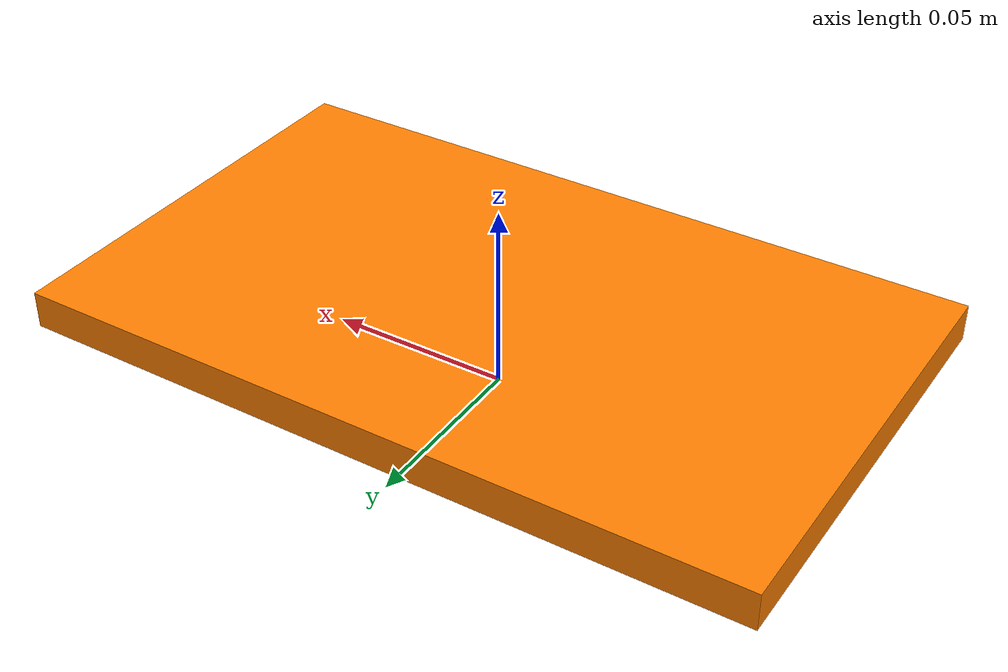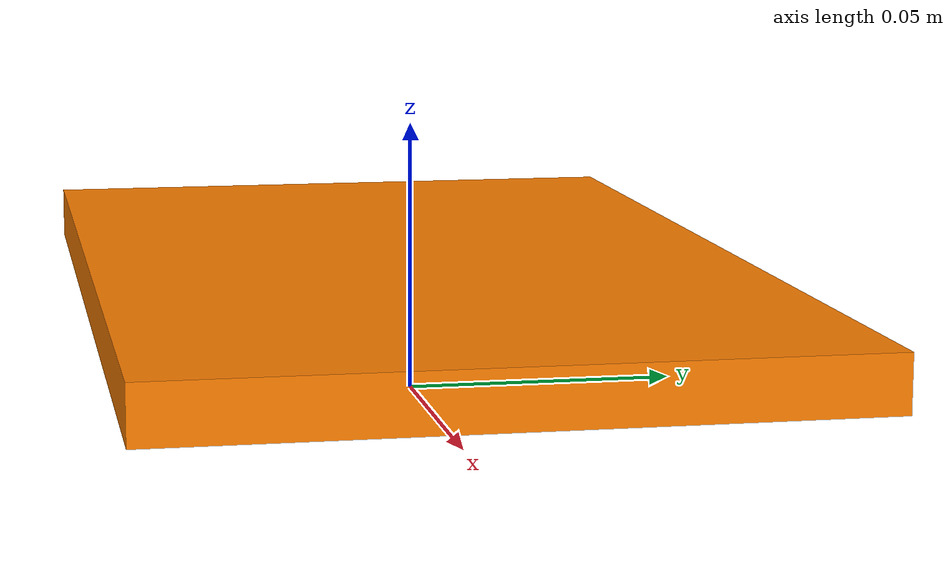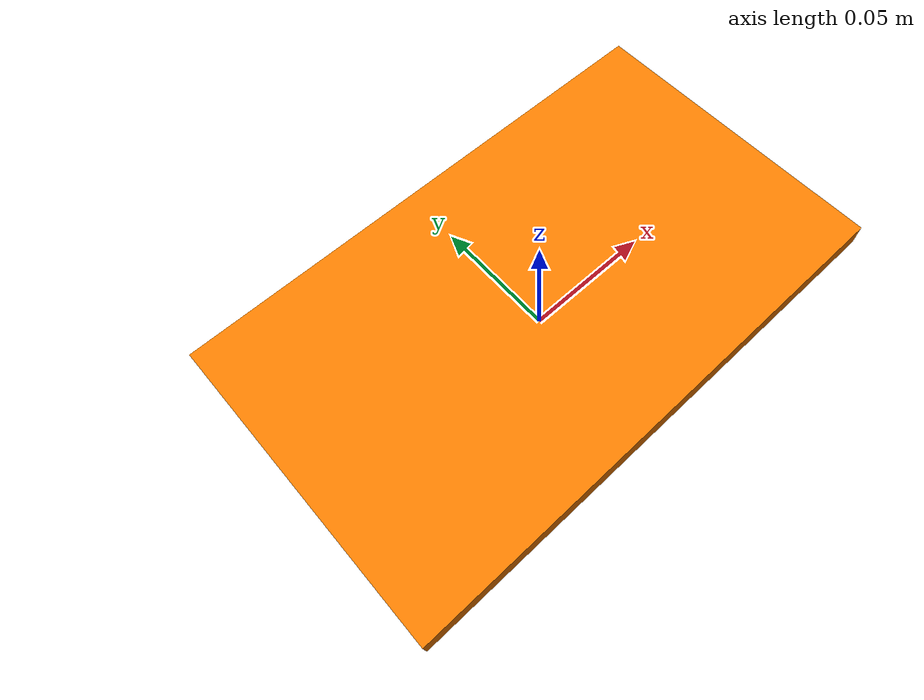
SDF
<?xml version="1.0" ?>
<sdf version="1.5">
  <model name="sheet_orange">
    <link name="link">
      <pose>0 0 0.02 0 0 0</pose>
      <inertial>
        <mass>0.038</mass>
        <inertia>
          <ixx>2.3541666666666672e-05</ixx>
          <ixy>0</ixy>
          <ixz>0</ixz>
          <iyy>2.3541666666666672e-05</iyy>
          <iyz>0</iyz>
          <izz>2.3541666666666672e-05</izz>
        </inertia>
      </inertial>

      <collision name="collision">
        <geometry>
          <box>
            <size>0.20 0.12 0.01</size>
          </box>
        </geometry>
        <surface>
          <contact>
            <!-- Red Pine coefficients for longitudinal axis of the wood
                 according to:
                 http://www.fpl.fs.fed.us/documnts/fplgtr/fplgtr113/ch04.pdf -->
            <poissons_ratio>0.347</poissons_ratio>
            <elastic_modulus>8.8e+09</elastic_modulus>
            <ode>
              <kp>100000</kp>
              <kd>1</kd>
              <max_vel>1.0</max_vel>
              <min_depth>0.001</min_depth>
            </ode>
          </contact>
          <friction>
            <torsional>
              <coefficient>1.0</coefficient>
              <use_patch_radius>0</use_patch_radius>
              <surface_radius>0.05</surface_radius>
            </torsional>
          </friction>
        </surface>
      </collision>

      <visual name="visual">
        <geometry>
          <box>
            <size>0.20 0.12 0.01</size>
          </box>
        </geometry>
        <material>
          <ambient>1 0.5 0 1</ambient>
					<diffuse>1 0.5 0 1</diffuse>
					<specular>0.1 0.1 0.1 1</specular>
					<emissive>0 0 0 0</emissive>
        </material>
      </visual>

    </link>
  </model>
</sdf>
